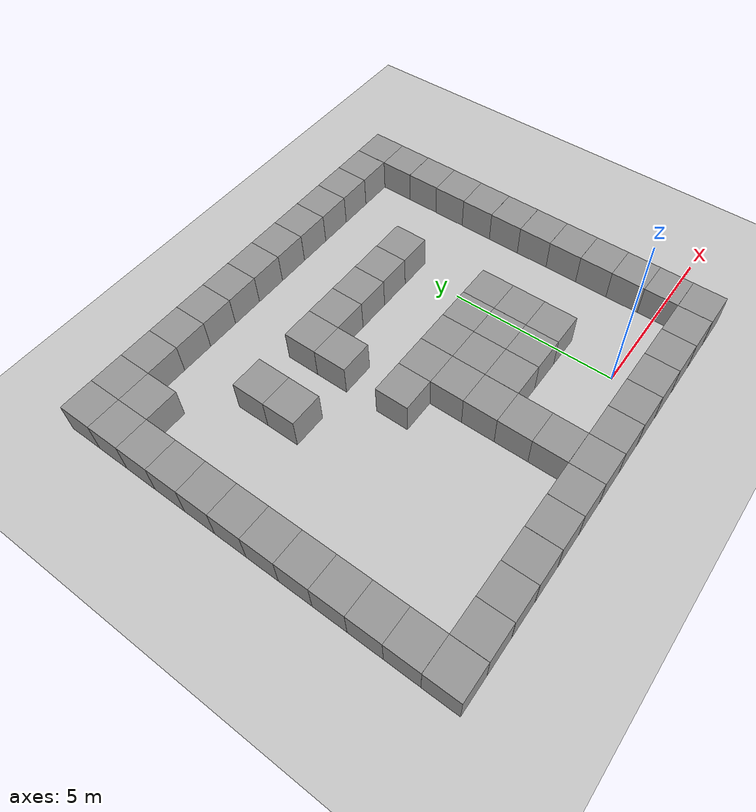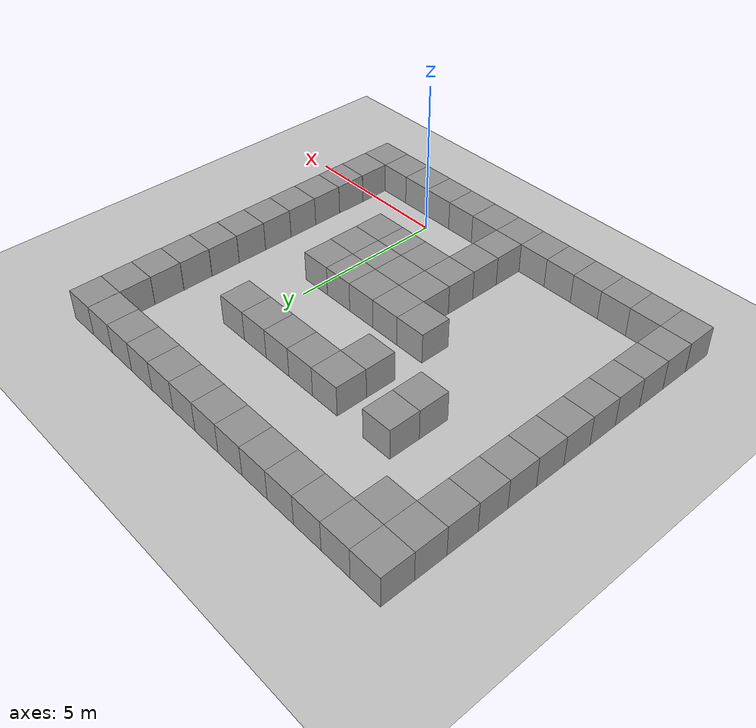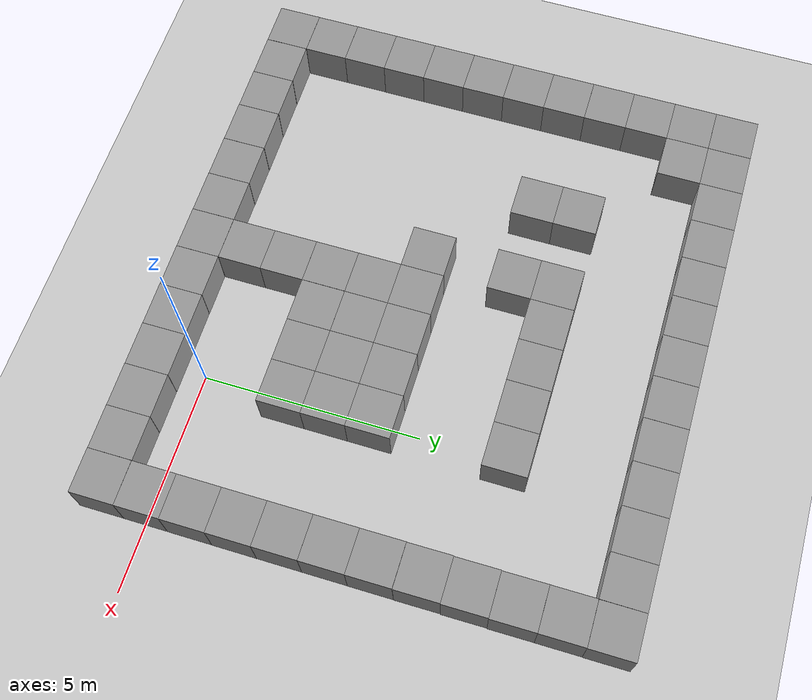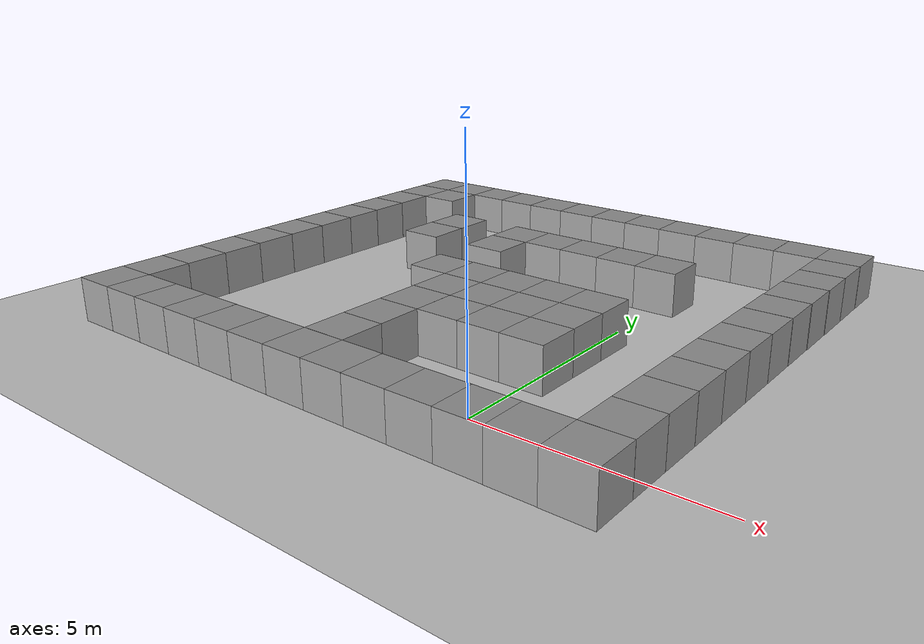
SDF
<sdf version="1.6">
 <world name="default">
  <light name="sun" type="directional">
   <pose>0 0 10 0 -0 0</pose>
   <diffuse>0.8 0.8 0.8 1</diffuse>
   <specular>0.2 0.2 0.2 1</specular>
   <attenuation>
    <range>1000</range>
    <constant>0.9</constant>
    <linear>0.01</linear>
    <quadratic>0.001</quadratic>
   </attenuation>
   <direction>-0.5 0.1 -0.9</direction>
  </light>
  <model name="ground_plane">
   <static>1</static>
   <link name="link">
    <collision name="collision">
     <geometry><plane><normal>0 0 1</normal><size>100 100</size></plane></geometry>
     <surface>
      <contact><collide_bitmask>65535</collide_bitmask></contact>
      <friction><ode><mu>100</mu><mu2>50</mu2></ode></friction>
     </surface>
    </collision>
    <visual name="visual">
     <cast_shadows>0</cast_shadows>
     <geometry><plane><normal>0 0 1</normal><size>100 100</size></plane></geometry>
     <material>
      <script><uri>file://media/materials/scripts/gazebo.material</uri><name>Gazebo/Grey</name></script>
     </material>
    </visual>
   </link>
  </model>
  <gravity>0 0 -9.8</gravity>
  <magnetic_field>6e-06 2.3e-05 -4.2e-05</magnetic_field>
  <atmosphere type="adiabatic"/>
  <physics name="default_physics" default="0" type="ode">
   <max_step_size>0.001</max_step_size>
   <real_time_factor>1</real_time_factor>
   <real_time_update_rate>1000</real_time_update_rate>
  </physics>
  <scene><ambient>0.4 0.4 0.4 1</ambient><background>0.7 0.7 0.7 1</background><shadows>1</shadows></scene>
  <audio><device>default</device></audio>
  <spherical_coordinates>
   <surface_model>EARTH_WGS84</surface_model>
   <latitude_deg>0</latitude_deg>
   <longitude_deg>0</longitude_deg>
   <elevation>0</elevation>
   <heading_deg>0</heading_deg>
  </spherical_coordinates>
  <model name="unit_box">
   <pose>1.00061 -1.00045 0.499995 -1e-05 -0 0.004028</pose>
   <link name="link">
    <inertial>
     <mass>1</mass>
     <inertia>
      <ixx>0.166667</ixx>
      <ixy>0</ixy>
      <ixz>0</ixz>
      <iyy>0.166667</iyy>
      <iyz>0</iyz>
      <izz>0.166667</izz>
     </inertia>
    </inertial>
    <collision name="collision"><geometry><box><size>1 1 1</size></box></geometry></collision>
    <visual name="visual">
     <geometry><box><size>1 1 1</size></box></geometry>
     <material>
      <script><name>Gazebo/Grey</name><uri>file://media/materials/scripts/gazebo.material</uri></script>
     </material>
    </visual>
   </link>
  </model>
  <model name="unit_box_0">
   <pose>2.00064 -1.00086 0.499995 -1e-05 -0 0.004051</pose>
   <link name="link">
    <inertial>
     <mass>1</mass>
     <inertia>
      <ixx>0.166667</ixx>
      <ixy>0</ixy>
      <ixz>0</ixz>
      <iyy>0.166667</iyy>
      <iyz>0</iyz>
      <izz>0.166667</izz>
     </inertia>
    </inertial>
    <collision name="collision"><geometry><box><size>1 1 1</size></box></geometry></collision>
    <visual name="visual">
     <geometry><box><size>1 1 1</size></box></geometry>
     <material>
      <script><name>Gazebo/Grey</name><uri>file://media/materials/scripts/gazebo.material</uri></script>
     </material>
    </visual>
   </link>
  </model>
  <model name="unit_box_1">
   <pose>3.00114 -1.00316 0.499995 1e-05 -0 0.003325</pose>
   <link name="link">
    <inertial>
     <mass>1</mass>
     <inertia>
      <ixx>0.166667</ixx>
      <ixy>0</ixy>
      <ixz>0</ixz>
      <iyy>0.166667</iyy>
      <iyz>0</iyz>
      <izz>0.166667</izz>
     </inertia>
    </inertial>
    <collision name="collision"><geometry><box><size>1 1 1</size></box></geometry></collision>
    <visual name="visual">
     <geometry><box><size>1 1 1</size></box></geometry>
     <material>
      <script><name>Gazebo/Grey</name><uri>file://media/materials/scripts/gazebo.material</uri></script>
     </material>
    </visual>
   </link>
  </model>
  <model name="unit_box_3">
   <pose>-9.00146 -1.00111 0.499995 0 1e-05 0.002462</pose>
   <link name="link">
    <inertial>
     <mass>1</mass>
     <inertia>
      <ixx>0.166667</ixx>
      <ixy>0</ixy>
      <ixz>0</ixz>
      <iyy>0.166667</iyy>
      <iyz>0</iyz>
      <izz>0.166667</izz>
     </inertia>
    </inertial>
    <collision name="collision"><geometry><box><size>1 1 1</size></box></geometry></collision>
    <visual name="visual">
     <geometry><box><size>1 1 1</size></box></geometry>
     <material>
      <script><name>Gazebo/Grey</name><uri>file://media/materials/scripts/gazebo.material</uri></script>
     </material>
    </visual>
   </link>
  </model>
  <model name="unit_box_2">
   <pose>-8.00038 -0.999696 0.5 0 -0 0.004619</pose>
   <link name="link">
    <inertial>
     <mass>1</mass>
     <inertia>
      <ixx>0.166667</ixx>
      <ixy>0</ixy>
      <ixz>0</ixz>
      <iyy>0.166667</iyy>
      <iyz>0</iyz>
      <izz>0.166667</izz>
     </inertia>
    </inertial>
    <collision name="collision"><geometry><box><size>1 1 1</size></box></geometry></collision>
    <visual name="visual">
     <geometry><box><size>1 1 1</size></box></geometry>
     <material>
      <script><name>Gazebo/Grey</name><uri>file://media/materials/scripts/gazebo.material</uri></script>
     </material>
    </visual>
   </link>
  </model>
  <model name="unit_box_4">
   <pose>-7.00037 -0.999874 0.499995 1e-05 -0 0.004618</pose>
   <link name="link">
    <inertial>
     <mass>1</mass>
     <inertia>
      <ixx>0.166667</ixx>
      <ixy>0</ixy>
      <ixz>0</ixz>
      <iyy>0.166667</iyy>
      <iyz>0</iyz>
      <izz>0.166667</izz>
     </inertia>
    </inertial>
    <collision name="collision"><geometry><box><size>1 1 1</size></box></geometry></collision>
    <visual name="visual">
     <geometry><box><size>1 1 1</size></box></geometry>
     <material>
      <script><name>Gazebo/Grey</name><uri>file://media/materials/scripts/gazebo.material</uri></script>
     </material>
    </visual>
   </link>
  </model>
  <model name="unit_box_5">
   <pose>-6.00035 -1.00053 0.5 0 -0 0.004619</pose>
   <link name="link">
    <inertial>
     <mass>1</mass>
     <inertia>
      <ixx>0.166667</ixx>
      <ixy>0</ixy>
      <ixz>0</ixz>
      <iyy>0.166667</iyy>
      <iyz>0</iyz>
      <izz>0.166667</izz>
     </inertia>
    </inertial>
    <collision name="collision"><geometry><box><size>1 1 1</size></box></geometry></collision>
    <visual name="visual">
     <geometry><box><size>1 1 1</size></box></geometry>
     <material>
      <script><name>Gazebo/Grey</name><uri>file://media/materials/scripts/gazebo.material</uri></script>
     </material>
    </visual>
   </link>
  </model>
  <model name="unit_box_6">
   <pose>-5.00003 -1.0008 0.499995 -1e-05 0 0.003996</pose>
   <link name="link">
    <inertial>
     <mass>1</mass>
     <inertia>
      <ixx>0.166667</ixx>
      <ixy>0</ixy>
      <ixz>0</ixz>
      <iyy>0.166667</iyy>
      <iyz>0</iyz>
      <izz>0.166667</izz>
     </inertia>
    </inertial>
    <collision name="collision"><geometry><box><size>1 1 1</size></box></geometry></collision>
    <visual name="visual">
     <geometry><box><size>1 1 1</size></box></geometry>
     <material>
      <script><name>Gazebo/Grey</name><uri>file://media/materials/scripts/gazebo.material</uri></script>
     </material>
    </visual>
   </link>
  </model>
  <model name="unit_box_7">
   <pose>-3.99986 -1.00158 0.499995 0 1e-05 0.003714</pose>
   <link name="link">
    <inertial>
     <mass>1</mass>
     <inertia>
      <ixx>0.166667</ixx>
      <ixy>0</ixy>
      <ixz>0</ixz>
      <iyy>0.166667</iyy>
      <iyz>0</iyz>
      <izz>0.166667</izz>
     </inertia>
    </inertial>
    <collision name="collision"><geometry><box><size>1 1 1</size></box></geometry></collision>
    <visual name="visual">
     <geometry><box><size>1 1 1</size></box></geometry>
     <material>
      <script><name>Gazebo/Grey</name><uri>file://media/materials/scripts/gazebo.material</uri></script>
     </material>
    </visual>
   </link>
  </model>
  <model name="unit_box_8">
   <pose>-2.99972 -1.00165 0.499995 0 1e-05 0.003476</pose>
   <link name="link">
    <inertial>
     <mass>1</mass>
     <inertia>
      <ixx>0.166667</ixx>
      <ixy>0</ixy>
      <ixz>0</ixz>
      <iyy>0.166667</iyy>
      <iyz>0</iyz>
      <izz>0.166667</izz>
     </inertia>
    </inertial>
    <collision name="collision"><geometry><box><size>1 1 1</size></box></geometry></collision>
    <visual name="visual">
     <geometry><box><size>1 1 1</size></box></geometry>
     <material>
      <script><name>Gazebo/Grey</name><uri>file://media/materials/scripts/gazebo.material</uri></script>
     </material>
    </visual>
   </link>
  </model>
  <model name="unit_box_9">
   <pose>-1.99944 -0.999961 0.499995 1e-05 -0 0.004009</pose>
   <link name="link">
    <inertial>
     <mass>1</mass>
     <inertia>
      <ixx>0.166667</ixx>
      <ixy>0</ixy>
      <ixz>0</ixz>
      <iyy>0.166667</iyy>
      <iyz>0</iyz>
      <izz>0.166667</izz>
     </inertia>
    </inertial>
    <collision name="collision"><geometry><box><size>1 1 1</size></box></geometry></collision>
    <visual name="visual">
     <geometry><box><size>1 1 1</size></box></geometry>
     <material>
      <script><name>Gazebo/Grey</name><uri>file://media/materials/scripts/gazebo.material</uri></script>
     </material>
    </visual>
   </link>
  </model>
  <model name="unit_box_10">
   <pose>-0.999426 -1.00001 0.499995 1e-05 -0 0.00402</pose>
   <link name="link">
    <inertial>
     <mass>1</mass>
     <inertia>
      <ixx>0.166667</ixx>
      <ixy>0</ixy>
      <ixz>0</ixz>
      <iyy>0.166667</iyy>
      <iyz>0</iyz>
      <izz>0.166667</izz>
     </inertia>
    </inertial>
    <collision name="collision"><geometry><box><size>1 1 1</size></box></geometry></collision>
    <visual name="visual">
     <geometry><box><size>1 1 1</size></box></geometry>
     <material>
      <script><name>Gazebo/Grey</name><uri>file://media/materials/scripts/gazebo.material</uri></script>
     </material>
    </visual>
   </link>
  </model>
  <model name="unit_box_11">
   <pose>0.000594 -1.00039 0.499995 0 1e-05 0.00402</pose>
   <link name="link">
    <inertial>
     <mass>1</mass>
     <inertia>
      <ixx>0.166667</ixx>
      <ixy>0</ixy>
      <ixz>0</ixz>
      <iyy>0.166667</iyy>
      <iyz>0</iyz>
      <izz>0.166667</izz>
     </inertia>
    </inertial>
    <collision name="collision"><geometry><box><size>1 1 1</size></box></geometry></collision>
    <visual name="visual">
     <geometry><box><size>1 1 1</size></box></geometry>
     <material>
      <script><name>Gazebo/Grey</name><uri>file://media/materials/scripts/gazebo.material</uri></script>
     </material>
    </visual>
   </link>
  </model>
  <model name="unit_box_12">
   <pose>-9.00066 1.3e-05 0.5 0 -0 0.000207</pose>
   <link name="link">
    <inertial>
     <mass>1</mass>
     <inertia>
      <ixx>0.166667</ixx>
      <ixy>0</ixy>
      <ixz>0</ixz>
      <iyy>0.166667</iyy>
      <iyz>0</iyz>
      <izz>0.166667</izz>
     </inertia>
    </inertial>
    <collision name="collision"><geometry><box><size>1 1 1</size></box></geometry></collision>
    <visual name="visual">
     <geometry><box><size>1 1 1</size></box></geometry>
     <material>
      <script><name>Gazebo/Grey</name><uri>file://media/materials/scripts/gazebo.material</uri></script>
     </material>
    </visual>
   </link>
  </model>
  <model name="unit_box_15">
   <pose>-3.00118 2.00026 0.499995 0 -1e-05 -0.000286</pose>
   <link name="link">
    <inertial>
     <mass>1</mass>
     <inertia>
      <ixx>0.166667</ixx>
      <ixy>0</ixy>
      <ixz>0</ixz>
      <iyy>0.166667</iyy>
      <iyz>0</iyz>
      <izz>0.166667</izz>
     </inertia>
    </inertial>
    <collision name="collision"><geometry><box><size>1 1 1</size></box></geometry></collision>
    <visual name="visual">
     <geometry><box><size>1 1 1</size></box></geometry>
     <material>
      <script><name>Gazebo/Grey</name><uri>file://media/materials/scripts/gazebo.material</uri></script>
     </material>
    </visual>
   </link>
  </model>
  <model name="unit_box_24">
   <pose>-9.00034 1.00008 0.499995 -1e-05 -0 9.4e-05</pose>
   <link name="link">
    <inertial>
     <mass>1</mass>
     <inertia>
      <ixx>0.166667</ixx>
      <ixy>0</ixy>
      <ixz>0</ixz>
      <iyy>0.166667</iyy>
      <iyz>0</iyz>
      <izz>0.166667</izz>
     </inertia>
    </inertial>
    <collision name="collision"><geometry><box><size>1 1 1</size></box></geometry></collision>
    <visual name="visual">
     <geometry><box><size>1 1 1</size></box></geometry>
     <material>
      <script><name>Gazebo/Grey</name><uri>file://media/materials/scripts/gazebo.material</uri></script>
     </material>
    </visual>
   </link>
  </model>
  <model name="unit_box_25">
   <pose>-8.99995 2.00008 0.499995 0 1e-05 7.2e-05</pose>
   <link name="link">
    <inertial>
     <mass>1</mass>
     <inertia>
      <ixx>0.166667</ixx>
      <ixy>0</ixy>
      <ixz>0</ixz>
      <iyy>0.166667</iyy>
      <iyz>0</iyz>
      <izz>0.166667</izz>
     </inertia>
    </inertial>
    <collision name="collision"><geometry><box><size>1 1 1</size></box></geometry></collision>
    <visual name="visual">
     <geometry><box><size>1 1 1</size></box></geometry>
     <material>
      <script><name>Gazebo/Grey</name><uri>file://media/materials/scripts/gazebo.material</uri></script>
     </material>
    </visual>
   </link>
  </model>
  <model name="unit_box_30">
   <pose>-9.00003 8.00018 0.499995 -0 -1e-05 0.000168</pose>
   <link name="link">
    <inertial>
     <mass>1</mass>
     <inertia>
      <ixx>0.166667</ixx>
      <ixy>0</ixy>
      <ixz>0</ixz>
      <iyy>0.166667</iyy>
      <iyz>0</iyz>
      <izz>0.166667</izz>
     </inertia>
    </inertial>
    <collision name="collision"><geometry><box><size>1 1 1</size></box></geometry></collision>
    <visual name="visual">
     <geometry><box><size>1 1 1</size></box></geometry>
     <material>
      <script><name>Gazebo/Grey</name><uri>file://media/materials/scripts/gazebo.material</uri></script>
     </material>
    </visual>
   </link>
  </model>
  <model name="unit_box_31">
   <pose>-9.00006 9.00018 0.5 0 -0 0.000169</pose>
   <link name="link">
    <inertial>
     <mass>1</mass>
     <inertia>
      <ixx>0.166667</ixx>
      <ixy>0</ixy>
      <ixz>0</ixz>
      <iyy>0.166667</iyy>
      <iyz>0</iyz>
      <izz>0.166667</izz>
     </inertia>
    </inertial>
    <collision name="collision"><geometry><box><size>1 1 1</size></box></geometry></collision>
    <visual name="visual">
     <geometry><box><size>1 1 1</size></box></geometry>
     <material>
      <script><name>Gazebo/Grey</name><uri>file://media/materials/scripts/gazebo.material</uri></script>
     </material>
    </visual>
   </link>
  </model>
  <model name="unit_box_39">
   <pose>3.00075 -0.002109 0.499995 0 -1e-05 0.001349</pose>
   <link name="link">
    <inertial>
     <mass>1</mass>
     <inertia>
      <ixx>0.166667</ixx>
      <ixy>0</ixy>
      <ixz>0</ixz>
      <iyy>0.166667</iyy>
      <iyz>0</iyz>
      <izz>0.166667</izz>
     </inertia>
    </inertial>
    <collision name="collision"><geometry><box><size>1 1 1</size></box></geometry></collision>
    <visual name="visual">
     <geometry><box><size>1 1 1</size></box></geometry>
     <material>
      <script><name>Gazebo/Grey</name><uri>file://media/materials/scripts/gazebo.material</uri></script>
     </material>
    </visual>
   </link>
  </model>
  <model name="unit_box_40">
   <pose>3.00095 0.997903 0.499995 0 -1e-05 0.001352</pose>
   <link name="link">
    <inertial>
     <mass>1</mass>
     <inertia>
      <ixx>0.166667</ixx>
      <ixy>0</ixy>
      <ixz>0</ixz>
      <iyy>0.166667</iyy>
      <iyz>0</iyz>
      <izz>0.166667</izz>
     </inertia>
    </inertial>
    <collision name="collision"><geometry><box><size>1 1 1</size></box></geometry></collision>
    <visual name="visual">
     <geometry><box><size>1 1 1</size></box></geometry>
     <material>
      <script><name>Gazebo/Grey</name><uri>file://media/materials/scripts/gazebo.material</uri></script>
     </material>
    </visual>
   </link>
  </model>
  <model name="unit_box_41">
   <pose>3.00123 1.99792 0.499995 0 1e-05 0.001386</pose>
   <link name="link">
    <inertial>
     <mass>1</mass>
     <inertia>
      <ixx>0.166667</ixx>
      <ixy>0</ixy>
      <ixz>0</ixz>
      <iyy>0.166667</iyy>
      <iyz>0</iyz>
      <izz>0.166667</izz>
     </inertia>
    </inertial>
    <collision name="collision"><geometry><box><size>1 1 1</size></box></geometry></collision>
    <visual name="visual">
     <geometry><box><size>1 1 1</size></box></geometry>
     <material>
      <script><name>Gazebo/Grey</name><uri>file://media/materials/scripts/gazebo.material</uri></script>
     </material>
    </visual>
   </link>
  </model>
  <model name="unit_box_47">
   <pose>2.99921 2.99799 0.499995 0 1e-05 0.001518</pose>
   <link name="link">
    <inertial>
     <mass>1</mass>
     <inertia>
      <ixx>0.166667</ixx>
      <ixy>0</ixy>
      <ixz>0</ixz>
      <iyy>0.166667</iyy>
      <iyz>0</iyz>
      <izz>0.166667</izz>
     </inertia>
    </inertial>
    <collision name="collision"><geometry><box><size>1 1 1</size></box></geometry></collision>
    <visual name="visual">
     <geometry><box><size>1 1 1</size></box></geometry>
     <material>
      <script><name>Gazebo/Grey</name><uri>file://media/materials/scripts/gazebo.material</uri></script>
     </material>
    </visual>
   </link>
  </model>
  <model name="unit_box_48">
   <pose>2.99794 3.99807 0.499995 0 -1e-05 0.001668</pose>
   <link name="link">
    <inertial>
     <mass>1</mass>
     <inertia>
      <ixx>0.166667</ixx>
      <ixy>0</ixy>
      <ixz>0</ixz>
      <iyy>0.166667</iyy>
      <iyz>0</iyz>
      <izz>0.166667</izz>
     </inertia>
    </inertial>
    <collision name="collision"><geometry><box><size>1 1 1</size></box></geometry></collision>
    <visual name="visual">
     <geometry><box><size>1 1 1</size></box></geometry>
     <material>
      <script><name>Gazebo/Grey</name><uri>file://media/materials/scripts/gazebo.material</uri></script>
     </material>
    </visual>
   </link>
  </model>
  <model name="unit_box_49">
   <pose>2.99727 4.99872 0.499995 0 1e-05 0.002966</pose>
   <link name="link">
    <inertial>
     <mass>1</mass>
     <inertia>
      <ixx>0.166667</ixx>
      <ixy>0</ixy>
      <ixz>0</ixz>
      <iyy>0.166667</iyy>
      <iyz>0</iyz>
      <izz>0.166667</izz>
     </inertia>
    </inertial>
    <collision name="collision"><geometry><box><size>1 1 1</size></box></geometry></collision>
    <visual name="visual">
     <geometry><box><size>1 1 1</size></box></geometry>
     <material>
      <script><name>Gazebo/Grey</name><uri>file://media/materials/scripts/gazebo.material</uri></script>
     </material>
    </visual>
   </link>
  </model>
  <model name="unit_box_50">
   <pose>2.99765 6.00088 0.499995 0 -1e-05 0.007275</pose>
   <link name="link">
    <inertial>
     <mass>1</mass>
     <inertia>
      <ixx>0.166667</ixx>
      <ixy>0</ixy>
      <ixz>0</ixz>
      <iyy>0.166667</iyy>
      <iyz>0</iyz>
      <izz>0.166667</izz>
     </inertia>
    </inertial>
    <collision name="collision"><geometry><box><size>1 1 1</size></box></geometry></collision>
    <visual name="visual">
     <geometry><box><size>1 1 1</size></box></geometry>
     <material>
      <script><name>Gazebo/Grey</name><uri>file://media/materials/scripts/gazebo.material</uri></script>
     </material>
    </visual>
   </link>
  </model>
  <model name="unit_box_51">
   <pose>3.00198 7.00097 0.499995 0 -1e-05 0.007224</pose>
   <link name="link">
    <inertial>
     <mass>1</mass>
     <inertia>
      <ixx>0.166667</ixx>
      <ixy>0</ixy>
      <ixz>0</ixz>
      <iyy>0.166667</iyy>
      <iyz>0</iyz>
      <izz>0.166667</izz>
     </inertia>
    </inertial>
    <collision name="collision"><geometry><box><size>1 1 1</size></box></geometry></collision>
    <visual name="visual">
     <geometry><box><size>1 1 1</size></box></geometry>
     <material>
      <script><name>Gazebo/Grey</name><uri>file://media/materials/scripts/gazebo.material</uri></script>
     </material>
    </visual>
   </link>
  </model>
  <model name="unit_box_52">
   <pose>3.0048 8.00126 0.5 0 -0 0.00674</pose>
   <link name="link">
    <inertial>
     <mass>1</mass>
     <inertia>
      <ixx>0.166667</ixx>
      <ixy>0</ixy>
      <ixz>0</ixz>
      <iyy>0.166667</iyy>
      <iyz>0</iyz>
      <izz>0.166667</izz>
     </inertia>
    </inertial>
    <collision name="collision"><geometry><box><size>1 1 1</size></box></geometry></collision>
    <visual name="visual">
     <geometry><box><size>1 1 1</size></box></geometry>
     <material>
      <script><name>Gazebo/Grey</name><uri>file://media/materials/scripts/gazebo.material</uri></script>
     </material>
    </visual>
   </link>
  </model>
  <model name="unit_box_13">
   <pose>-2.99996 1.00006 0.499995 0 1e-05 7.2e-05</pose>
   <link name="link">
    <inertial>
     <mass>1</mass>
     <inertia>
      <ixx>0.166667</ixx>
      <ixy>0</ixy>
      <ixz>0</ixz>
      <iyy>0.166667</iyy>
      <iyz>0</iyz>
      <izz>0.166667</izz>
     </inertia>
    </inertial>
    <collision name="collision"><geometry><box><size>1 1 1</size></box></geometry></collision>
    <visual name="visual">
     <geometry><box><size>1 1 1</size></box></geometry>
     <material>
      <script><name>Gazebo/Grey</name><uri>file://media/materials/scripts/gazebo.material</uri></script>
     </material>
    </visual>
   </link>
  </model>
  <model name="unit_box_14">
   <pose>-2.99992 5.1e-05 0.499995 0 1e-05 7e-05</pose>
   <link name="link">
    <inertial>
     <mass>1</mass>
     <inertia>
      <ixx>0.166667</ixx>
      <ixy>0</ixy>
      <ixz>0</ixz>
      <iyy>0.166667</iyy>
      <iyz>0</iyz>
      <izz>0.166667</izz>
     </inertia>
    </inertial>
    <collision name="collision"><geometry><box><size>1 1 1</size></box></geometry></collision>
    <visual name="visual">
     <geometry><box><size>1 1 1</size></box></geometry>
     <material>
      <script><name>Gazebo/Grey</name><uri>file://media/materials/scripts/gazebo.material</uri></script>
     </material>
    </visual>
   </link>
  </model>
  <model name="unit_box_27">
   <pose>-1.99999 1.99996 0.499995 0 1e-05 1.5e-05</pose>
   <link name="link">
    <inertial>
     <mass>1</mass>
     <inertia>
      <ixx>0.166667</ixx>
      <ixy>0</ixy>
      <ixz>0</ixz>
      <iyy>0.166667</iyy>
      <iyz>0</iyz>
      <izz>0.166667</izz>
     </inertia>
    </inertial>
    <collision name="collision"><geometry><box><size>1 1 1</size></box></geometry></collision>
    <visual name="visual">
     <geometry><box><size>1 1 1</size></box></geometry>
     <material>
      <script><name>Gazebo/Grey</name><uri>file://media/materials/scripts/gazebo.material</uri></script>
     </material>
    </visual>
   </link>
  </model>
  <model name="unit_box_42">
   <pose>-0.999987 1.99997 0.499995 0 1e-05 1.4e-05</pose>
   <link name="link">
    <inertial>
     <mass>1</mass>
     <inertia>
      <ixx>0.166667</ixx>
      <ixy>0</ixy>
      <ixz>0</ixz>
      <iyy>0.166667</iyy>
      <iyz>0</iyz>
      <izz>0.166667</izz>
     </inertia>
    </inertial>
    <collision name="collision"><geometry><box><size>1 1 1</size></box></geometry></collision>
    <visual name="visual">
     <geometry><box><size>1 1 1</size></box></geometry>
     <material>
      <script><name>Gazebo/Grey</name><uri>file://media/materials/scripts/gazebo.material</uri></script>
     </material>
    </visual>
   </link>
  </model>
  <model name="unit_box_43">
   <pose>1.5e-05 1.99998 0.499995 0 -1e-05 1e-06</pose>
   <link name="link">
    <inertial>
     <mass>1</mass>
     <inertia>
      <ixx>0.166667</ixx>
      <ixy>0</ixy>
      <ixz>0</ixz>
      <iyy>0.166667</iyy>
      <iyz>0</iyz>
      <izz>0.166667</izz>
     </inertia>
    </inertial>
    <collision name="collision"><geometry><box><size>1 1 1</size></box></geometry></collision>
    <visual name="visual">
     <geometry><box><size>1 1 1</size></box></geometry>
     <material>
      <script><name>Gazebo/Grey</name><uri>file://media/materials/scripts/gazebo.material</uri></script>
     </material>
    </visual>
   </link>
  </model>
  <model name="unit_box_44">
   <pose>4e-05 3 0.499995 -0 1e-05 -3.2e-05</pose>
   <link name="link">
    <inertial>
     <mass>1</mass>
     <inertia>
      <ixx>0.166667</ixx>
      <ixy>0</ixy>
      <ixz>0</ixz>
      <iyy>0.166667</iyy>
      <iyz>0</iyz>
      <izz>0.166667</izz>
     </inertia>
    </inertial>
    <collision name="collision"><geometry><box><size>1 1 1</size></box></geometry></collision>
    <visual name="visual">
     <geometry><box><size>1 1 1</size></box></geometry>
     <material>
      <script><name>Gazebo/Grey</name><uri>file://media/materials/scripts/gazebo.material</uri></script>
     </material>
    </visual>
   </link>
  </model>
  <model name="unit_box_45">
   <pose>4.1e-05 4.00004 0.499995 -0 1e-05 -7.5e-05</pose>
   <link name="link">
    <inertial>
     <mass>1</mass>
     <inertia>
      <ixx>0.166667</ixx>
      <ixy>0</ixy>
      <ixz>0</ixz>
      <iyy>0.166667</iyy>
      <iyz>0</iyz>
      <izz>0.166667</izz>
     </inertia>
    </inertial>
    <collision name="collision"><geometry><box><size>1 1 1</size></box></geometry></collision>
    <visual name="visual">
     <geometry><box><size>1 1 1</size></box></geometry>
     <material>
      <script><name>Gazebo/Grey</name><uri>file://media/materials/scripts/gazebo.material</uri></script>
     </material>
    </visual>
   </link>
  </model>
  <model name="unit_box_16">
   <pose>-3.00015 3.00027 0.499995 -0 -1e-05 -0.000284</pose>
   <link name="link">
    <inertial>
     <mass>1</mass>
     <inertia>
      <ixx>0.166667</ixx>
      <ixy>0</ixy>
      <ixz>0</ixz>
      <iyy>0.166667</iyy>
      <iyz>0</iyz>
      <izz>0.166667</izz>
     </inertia>
    </inertial>
    <collision name="collision"><geometry><box><size>1 1 1</size></box></geometry></collision>
    <visual name="visual">
     <geometry><box><size>1 1 1</size></box></geometry>
     <material>
      <script><name>Gazebo/Grey</name><uri>file://media/materials/scripts/gazebo.material</uri></script>
     </material>
    </visual>
   </link>
  </model>
  <model name="unit_box_17">
   <pose>-3.00005 4.00031 0.499995 -0 1e-05 -0.000185</pose>
   <link name="link">
    <inertial>
     <mass>1</mass>
     <inertia>
      <ixx>0.166667</ixx>
      <ixy>0</ixy>
      <ixz>0</ixz>
      <iyy>0.166667</iyy>
      <iyz>0</iyz>
      <izz>0.166667</izz>
     </inertia>
    </inertial>
    <collision name="collision"><geometry><box><size>1 1 1</size></box></geometry></collision>
    <visual name="visual">
     <geometry><box><size>1 1 1</size></box></geometry>
     <material>
      <script><name>Gazebo/Grey</name><uri>file://media/materials/scripts/gazebo.material</uri></script>
     </material>
    </visual>
   </link>
  </model>
  <model name="unit_box_18">
   <pose>-1.99998 4.00009 0.5 0 0 -0.000112</pose>
   <link name="link">
    <inertial>
     <mass>1</mass>
     <inertia>
      <ixx>0.166667</ixx>
      <ixy>0</ixy>
      <ixz>0</ixz>
      <iyy>0.166667</iyy>
      <iyz>0</iyz>
      <izz>0.166667</izz>
     </inertia>
    </inertial>
    <collision name="collision"><geometry><box><size>1 1 1</size></box></geometry></collision>
    <visual name="visual">
     <geometry><box><size>1 1 1</size></box></geometry>
     <material>
      <script><name>Gazebo/Grey</name><uri>file://media/materials/scripts/gazebo.material</uri></script>
     </material>
    </visual>
   </link>
  </model>
  <model name="unit_box_19">
   <pose>-0.999979 4.00004 0.499995 0 -1e-05 -9.5e-05</pose>
   <link name="link">
    <inertial>
     <mass>1</mass>
     <inertia>
      <ixx>0.166667</ixx>
      <ixy>0</ixy>
      <ixz>0</ixz>
      <iyy>0.166667</iyy>
      <iyz>0</iyz>
      <izz>0.166667</izz>
     </inertia>
    </inertial>
    <collision name="collision"><geometry><box><size>1 1 1</size></box></geometry></collision>
    <visual name="visual">
     <geometry><box><size>1 1 1</size></box></geometry>
     <material>
      <script><name>Gazebo/Grey</name><uri>file://media/materials/scripts/gazebo.material</uri></script>
     </material>
    </visual>
   </link>
  </model>
  <model name="unit_box_20">
   <pose>-0.999973 3 0.499995 1e-05 -0 -3.4e-05</pose>
   <link name="link">
    <inertial>
     <mass>1</mass>
     <inertia>
      <ixx>0.166667</ixx>
      <ixy>0</ixy>
      <ixz>0</ixz>
      <iyy>0.166667</iyy>
      <iyz>0</iyz>
      <izz>0.166667</izz>
     </inertia>
    </inertial>
    <collision name="collision"><geometry><box><size>1 1 1</size></box></geometry></collision>
    <visual name="visual">
     <geometry><box><size>1 1 1</size></box></geometry>
     <material>
      <script><name>Gazebo/Grey</name><uri>file://media/materials/scripts/gazebo.material</uri></script>
     </material>
    </visual>
   </link>
  </model>
  <model name="unit_box_21">
   <pose>-1.99998 3.00001 0.499995 1e-05 -0 -3.6e-05</pose>
   <link name="link">
    <inertial>
     <mass>1</mass>
     <inertia>
      <ixx>0.166667</ixx>
      <ixy>0</ixy>
      <ixz>0</ixz>
      <iyy>0.166667</iyy>
      <iyz>0</iyz>
      <izz>0.166667</izz>
     </inertia>
    </inertial>
    <collision name="collision"><geometry><box><size>1 1 1</size></box></geometry></collision>
    <visual name="visual">
     <geometry><box><size>1 1 1</size></box></geometry>
     <material>
      <script><name>Gazebo/Grey</name><uri>file://media/materials/scripts/gazebo.material</uri></script>
     </material>
    </visual>
   </link>
  </model>
  <model name="unit_box_22">
   <pose>-4.00009 3.99999 0.499995 1e-05 0 -0.000102</pose>
   <link name="link">
    <inertial>
     <mass>1</mass>
     <inertia>
      <ixx>0.166667</ixx>
      <ixy>0</ixy>
      <ixz>0</ixz>
      <iyy>0.166667</iyy>
      <iyz>0</iyz>
      <izz>0.166667</izz>
     </inertia>
    </inertial>
    <collision name="collision"><geometry><box><size>1 1 1</size></box></geometry></collision>
    <visual name="visual">
     <geometry><box><size>1 1 1</size></box></geometry>
     <material>
      <script><name>Gazebo/Grey</name><uri>file://media/materials/scripts/gazebo.material</uri></script>
     </material>
    </visual>
   </link>
  </model>
  <model name="unit_box_46">
   <pose>-4.00003 6.00003 0.499995 0 1e-05 -3.5e-05</pose>
   <link name="link">
    <inertial>
     <mass>1</mass>
     <inertia>
      <ixx>0.166667</ixx>
      <ixy>0</ixy>
      <ixz>0</ixz>
      <iyy>0.166667</iyy>
      <iyz>0</iyz>
      <izz>0.166667</izz>
     </inertia>
    </inertial>
    <collision name="collision"><geometry><box><size>1 1 1</size></box></geometry></collision>
    <visual name="visual">
     <geometry><box><size>1 1 1</size></box></geometry>
     <material>
      <script><name>Gazebo/Grey</name><uri>file://media/materials/scripts/gazebo.material</uri></script>
     </material>
    </visual>
   </link>
  </model>
  <model name="unit_box_58">
   <pose>-4.00002 7.00004 0.499995 0 1e-05 -3.1e-05</pose>
   <link name="link">
    <inertial>
     <mass>1</mass>
     <inertia>
      <ixx>0.166667</ixx>
      <ixy>0</ixy>
      <ixz>0</ixz>
      <iyy>0.166667</iyy>
      <iyz>0</iyz>
      <izz>0.166667</izz>
     </inertia>
    </inertial>
    <collision name="collision"><geometry><box><size>1 1 1</size></box></geometry></collision>
    <visual name="visual">
     <geometry><box><size>1 1 1</size></box></geometry>
     <material>
      <script><name>Gazebo/Grey</name><uri>file://media/materials/scripts/gazebo.material</uri></script>
     </material>
    </visual>
   </link>
  </model>
  <model name="unit_box_59">
   <pose>-2.99999 7.00001 0.499995 0 1e-05 -1e-06</pose>
   <link name="link">
    <inertial>
     <mass>1</mass>
     <inertia>
      <ixx>0.166667</ixx>
      <ixy>0</ixy>
      <ixz>0</ixz>
      <iyy>0.166667</iyy>
      <iyz>0</iyz>
      <izz>0.166667</izz>
     </inertia>
    </inertial>
    <collision name="collision"><geometry><box><size>1 1 1</size></box></geometry></collision>
    <visual name="visual">
     <geometry><box><size>1 1 1</size></box></geometry>
     <material>
      <script><name>Gazebo/Grey</name><uri>file://media/materials/scripts/gazebo.material</uri></script>
     </material>
    </visual>
   </link>
  </model>
  <model name="unit_box_60">
   <pose>-1.99999 7.00001 0.499995 0 1e-05 -1e-06</pose>
   <link name="link">
    <inertial>
     <mass>1</mass>
     <inertia>
      <ixx>0.166667</ixx>
      <ixy>0</ixy>
      <ixz>0</ixz>
      <iyy>0.166667</iyy>
      <iyz>0</iyz>
      <izz>0.166667</izz>
     </inertia>
    </inertial>
    <collision name="collision"><geometry><box><size>1 1 1</size></box></geometry></collision>
    <visual name="visual">
     <geometry><box><size>1 1 1</size></box></geometry>
     <material>
      <script><name>Gazebo/Grey</name><uri>file://media/materials/scripts/gazebo.material</uri></script>
     </material>
    </visual>
   </link>
  </model>
  <model name="unit_box_61">
   <pose>-0.999994 7.00002 0.499995 0 -1e-05 2e-06</pose>
   <link name="link">
    <inertial>
     <mass>1</mass>
     <inertia>
      <ixx>0.166667</ixx>
      <ixy>0</ixy>
      <ixz>0</ixz>
      <iyy>0.166667</iyy>
      <iyz>0</iyz>
      <izz>0.166667</izz>
     </inertia>
    </inertial>
    <collision name="collision"><geometry><box><size>1 1 1</size></box></geometry></collision>
    <visual name="visual">
     <geometry><box><size>1 1 1</size></box></geometry>
     <material>
      <script><name>Gazebo/Grey</name><uri>file://media/materials/scripts/gazebo.material</uri></script>
     </material>
    </visual>
   </link>
  </model>
  <model name="unit_box_62">
   <pose>1.1e-05 6.99999 0.499995 0 -1e-05 6e-06</pose>
   <link name="link">
    <inertial>
     <mass>1</mass>
     <inertia>
      <ixx>0.166667</ixx>
      <ixy>0</ixy>
      <ixz>0</ixz>
      <iyy>0.166667</iyy>
      <iyz>0</iyz>
      <izz>0.166667</izz>
     </inertia>
    </inertial>
    <collision name="collision"><geometry><box><size>1 1 1</size></box></geometry></collision>
    <visual name="visual">
     <geometry><box><size>1 1 1</size></box></geometry>
     <material>
      <script><name>Gazebo/Grey</name><uri>file://media/materials/scripts/gazebo.material</uri></script>
     </material>
    </visual>
   </link>
  </model>
  <model name="unit_box_63">
   <pose>-6.00001 6.00001 0.5 -1e-06 -0 4e-06</pose>
   <link name="link">
    <inertial>
     <mass>1</mass>
     <inertia>
      <ixx>0.166667</ixx>
      <ixy>0</ixy>
      <ixz>0</ixz>
      <iyy>0.166667</iyy>
      <iyz>0</iyz>
      <izz>0.166667</izz>
     </inertia>
    </inertial>
    <collision name="collision"><geometry><box><size>1 1 1</size></box></geometry></collision>
    <visual name="visual">
     <geometry><box><size>1 1 1</size></box></geometry>
     <material>
      <script><name>Gazebo/Grey</name><uri>file://media/materials/scripts/gazebo.material</uri></script>
     </material>
    </visual>
   </link>
  </model>
  <model name="unit_box_23">
   <pose>-6 7.00001 0.5 1e-06 -0 4e-06</pose>
   <link name="link">
    <inertial>
     <mass>1</mass>
     <inertia>
      <ixx>0.166667</ixx>
      <ixy>0</ixy>
      <ixz>0</ixz>
      <iyy>0.166667</iyy>
      <iyz>0</iyz>
      <izz>0.166667</izz>
     </inertia>
    </inertial>
    <collision name="collision"><geometry><box><size>1 1 1</size></box></geometry></collision>
    <visual name="visual">
     <geometry><box><size>1 1 1</size></box></geometry>
     <material>
      <script><name>Gazebo/Grey</name><uri>file://media/materials/scripts/gazebo.material</uri></script>
     </material>
    </visual>
   </link>
  </model>
  <model name="unit_box_28">
   <pose>3.00059 9.00223 0.5 0 -0 0.004796</pose>
   <link name="link">
    <inertial>
     <mass>1</mass>
     <inertia>
      <ixx>0.166667</ixx>
      <ixy>0</ixy>
      <ixz>0</ixz>
      <iyy>0.166667</iyy>
      <iyz>0</iyz>
      <izz>0.166667</izz>
     </inertia>
    </inertial>
    <collision name="collision"><geometry><box><size>1 1 1</size></box></geometry></collision>
    <visual name="visual">
     <geometry><box><size>1 1 1</size></box></geometry>
     <material>
      <script><name>Gazebo/Grey</name><uri>file://media/materials/scripts/gazebo.material</uri></script>
     </material>
    </visual>
   </link>
  </model>
  <model name="unit_box_29">
   <pose>3.00149 10.0029 0.499995 0 1e-05 0.003521</pose>
   <link name="link">
    <inertial>
     <mass>1</mass>
     <inertia>
      <ixx>0.166667</ixx>
      <ixy>0</ixy>
      <ixz>0</ixz>
      <iyy>0.166667</iyy>
      <iyz>0</iyz>
      <izz>0.166667</izz>
     </inertia>
    </inertial>
    <collision name="collision"><geometry><box><size>1 1 1</size></box></geometry></collision>
    <visual name="visual">
     <geometry><box><size>1 1 1</size></box></geometry>
     <material>
      <script><name>Gazebo/Grey</name><uri>file://media/materials/scripts/gazebo.material</uri></script>
     </material>
    </visual>
   </link>
  </model>
  <model name="unit_box_37">
   <pose>2.00004 10.0002 0.499995 0 -1e-05 0.000632</pose>
   <link name="link">
    <inertial>
     <mass>1</mass>
     <inertia>
      <ixx>0.166667</ixx>
      <ixy>0</ixy>
      <ixz>0</ixz>
      <iyy>0.166667</iyy>
      <iyz>0</iyz>
      <izz>0.166667</izz>
     </inertia>
    </inertial>
    <collision name="collision"><geometry><box><size>1 1 1</size></box></geometry></collision>
    <visual name="visual">
     <geometry><box><size>1 1 1</size></box></geometry>
     <material>
      <script><name>Gazebo/Grey</name><uri>file://media/materials/scripts/gazebo.material</uri></script>
     </material>
    </visual>
   </link>
  </model>
  <model name="unit_box_38">
   <pose>0.999987 10.0001 0.499995 0 1e-05 0.00052</pose>
   <link name="link">
    <inertial>
     <mass>1</mass>
     <inertia>
      <ixx>0.166667</ixx>
      <ixy>0</ixy>
      <ixz>0</ixz>
      <iyy>0.166667</iyy>
      <iyz>0</iyz>
      <izz>0.166667</izz>
     </inertia>
    </inertial>
    <collision name="collision"><geometry><box><size>1 1 1</size></box></geometry></collision>
    <visual name="visual">
     <geometry><box><size>1 1 1</size></box></geometry>
     <material>
      <script><name>Gazebo/Grey</name><uri>file://media/materials/scripts/gazebo.material</uri></script>
     </material>
    </visual>
   </link>
  </model>
  <model name="unit_box_53">
   <pose>-7e-05 10.0003 0.5 0 -0 0.000422</pose>
   <link name="link">
    <inertial>
     <mass>1</mass>
     <inertia>
      <ixx>0.166667</ixx>
      <ixy>0</ixy>
      <ixz>0</ixz>
      <iyy>0.166667</iyy>
      <iyz>0</iyz>
      <izz>0.166667</izz>
     </inertia>
    </inertial>
    <collision name="collision"><geometry><box><size>1 1 1</size></box></geometry></collision>
    <visual name="visual">
     <geometry><box><size>1 1 1</size></box></geometry>
     <material>
      <script><name>Gazebo/Grey</name><uri>file://media/materials/scripts/gazebo.material</uri></script>
     </material>
    </visual>
   </link>
  </model>
  <model name="unit_box_54">
   <pose>-1.0001 10.0004 0.499995 1e-05 -0 0.000365</pose>
   <link name="link">
    <inertial>
     <mass>1</mass>
     <inertia>
      <ixx>0.166667</ixx>
      <ixy>0</ixy>
      <ixz>0</ixz>
      <iyy>0.166667</iyy>
      <iyz>0</iyz>
      <izz>0.166667</izz>
     </inertia>
    </inertial>
    <collision name="collision"><geometry><box><size>1 1 1</size></box></geometry></collision>
    <visual name="visual">
     <geometry><box><size>1 1 1</size></box></geometry>
     <material>
      <script><name>Gazebo/Grey</name><uri>file://media/materials/scripts/gazebo.material</uri></script>
     </material>
    </visual>
   </link>
  </model>
  <model name="unit_box_55">
   <pose>-2.00016 10.0003 0.5 0 -0 0.000234</pose>
   <link name="link">
    <inertial>
     <mass>1</mass>
     <inertia>
      <ixx>0.166667</ixx>
      <ixy>0</ixy>
      <ixz>0</ixz>
      <iyy>0.166667</iyy>
      <iyz>0</iyz>
      <izz>0.166667</izz>
     </inertia>
    </inertial>
    <collision name="collision"><geometry><box><size>1 1 1</size></box></geometry></collision>
    <visual name="visual">
     <geometry><box><size>1 1 1</size></box></geometry>
     <material>
      <script><name>Gazebo/Grey</name><uri>file://media/materials/scripts/gazebo.material</uri></script>
     </material>
    </visual>
   </link>
  </model>
  <model name="unit_box_56">
   <pose>-3.00017 10.0001 0.5 0 -0 0.000234</pose>
   <link name="link">
    <inertial>
     <mass>1</mass>
     <inertia>
      <ixx>0.166667</ixx>
      <ixy>0</ixy>
      <ixz>0</ixz>
      <iyy>0.166667</iyy>
      <iyz>0</iyz>
      <izz>0.166667</izz>
     </inertia>
    </inertial>
    <collision name="collision"><geometry><box><size>1 1 1</size></box></geometry></collision>
    <visual name="visual">
     <geometry><box><size>1 1 1</size></box></geometry>
     <material>
      <script><name>Gazebo/Grey</name><uri>file://media/materials/scripts/gazebo.material</uri></script>
     </material>
    </visual>
   </link>
  </model>
  <model name="unit_box_32">
   <pose>-9.00021 10.0002 0.499995 0 -1e-05 0.00021</pose>
   <link name="link">
    <inertial>
     <mass>1</mass>
     <inertia>
      <ixx>0.166667</ixx>
      <ixy>0</ixy>
      <ixz>0</ixz>
      <iyy>0.166667</iyy>
      <iyz>0</iyz>
      <izz>0.166667</izz>
     </inertia>
    </inertial>
    <collision name="collision"><geometry><box><size>1 1 1</size></box></geometry></collision>
    <visual name="visual">
     <geometry><box><size>1 1 1</size></box></geometry>
     <material>
      <script><name>Gazebo/Grey</name><uri>file://media/materials/scripts/gazebo.material</uri></script>
     </material>
    </visual>
   </link>
  </model>
  <model name="unit_box_33">
   <pose>-8.00019 10 0.499995 0 -9e-06 0.000225</pose>
   <link name="link">
    <inertial>
     <mass>1</mass>
     <inertia>
      <ixx>0.166667</ixx>
      <ixy>0</ixy>
      <ixz>0</ixz>
      <iyy>0.166667</iyy>
      <iyz>0</iyz>
      <izz>0.166667</izz>
     </inertia>
    </inertial>
    <collision name="collision"><geometry><box><size>1 1 1</size></box></geometry></collision>
    <visual name="visual">
     <geometry><box><size>1 1 1</size></box></geometry>
     <material>
      <script><name>Gazebo/Grey</name><uri>file://media/materials/scripts/gazebo.material</uri></script>
     </material>
    </visual>
   </link>
  </model>
  <model name="unit_box_34">
   <pose>-7.00018 10.0001 0.499995 0 1e-05 0.00023</pose>
   <link name="link">
    <inertial>
     <mass>1</mass>
     <inertia>
      <ixx>0.166667</ixx>
      <ixy>0</ixy>
      <ixz>0</ixz>
      <iyy>0.166667</iyy>
      <iyz>0</iyz>
      <izz>0.166667</izz>
     </inertia>
    </inertial>
    <collision name="collision"><geometry><box><size>1 1 1</size></box></geometry></collision>
    <visual name="visual">
     <geometry><box><size>1 1 1</size></box></geometry>
     <material>
      <script><name>Gazebo/Grey</name><uri>file://media/materials/scripts/gazebo.material</uri></script>
     </material>
    </visual>
   </link>
  </model>
  <model name="unit_box_35">
   <pose>-6.00018 10.0001 0.499995 1e-05 -0 0.000229</pose>
   <link name="link">
    <inertial>
     <mass>1</mass>
     <inertia>
      <ixx>0.166667</ixx>
      <ixy>0</ixy>
      <ixz>0</ixz>
      <iyy>0.166667</iyy>
      <iyz>0</iyz>
      <izz>0.166667</izz>
     </inertia>
    </inertial>
    <collision name="collision"><geometry><box><size>1 1 1</size></box></geometry></collision>
    <visual name="visual">
     <geometry><box><size>1 1 1</size></box></geometry>
     <material>
      <script><name>Gazebo/Grey</name><uri>file://media/materials/scripts/gazebo.material</uri></script>
     </material>
    </visual>
   </link>
  </model>
  <model name="unit_box_57">
   <pose>-5.00018 10.0003 0.499995 1e-05 -0 0.00023</pose>
   <link name="link">
    <inertial>
     <mass>1</mass>
     <inertia>
      <ixx>0.166667</ixx>
      <ixy>0</ixy>
      <ixz>0</ixz>
      <iyy>0.166667</iyy>
      <iyz>0</iyz>
      <izz>0.166667</izz>
     </inertia>
    </inertial>
    <collision name="collision"><geometry><box><size>1 1 1</size></box></geometry></collision>
    <visual name="visual">
     <geometry><box><size>1 1 1</size></box></geometry>
     <material>
      <script><name>Gazebo/Grey</name><uri>file://media/materials/scripts/gazebo.material</uri></script>
     </material>
    </visual>
   </link>
  </model>
  <model name="unit_box_64">
   <pose>-4.00017 10.0001 0.499995 1e-05 -0 0.00023</pose>
   <link name="link">
    <inertial>
     <mass>1</mass>
     <inertia>
      <ixx>0.166667</ixx>
      <ixy>0</ixy>
      <ixz>0</ixz>
      <iyy>0.166667</iyy>
      <iyz>0</iyz>
      <izz>0.166667</izz>
     </inertia>
    </inertial>
    <collision name="collision"><geometry><box><size>1 1 1</size></box></geometry></collision>
    <visual name="visual">
     <geometry><box><size>1 1 1</size></box></geometry>
     <material>
      <script><name>Gazebo/Grey</name><uri>file://media/materials/scripts/gazebo.material</uri></script>
     </material>
    </visual>
   </link>
  </model>
  <model name="unit_box_65">
   <pose>-7.99994 8.99994 0.499995 0 -1e-05 0.000107</pose>
   <link name="link">
    <inertial>
     <mass>1</mass>
     <inertia>
      <ixx>0.166667</ixx>
      <ixy>0</ixy>
      <ixz>0</ixz>
      <iyy>0.166667</iyy>
      <iyz>0</iyz>
      <izz>0.166667</izz>
     </inertia>
    </inertial>
    <collision name="collision"><geometry><box><size>1 1 1</size></box></geometry></collision>
    <visual name="visual">
     <geometry><box><size>1 1 1</size></box></geometry>
     <material>
      <script><name>Gazebo/Grey</name><uri>file://media/materials/scripts/gazebo.material</uri></script>
     </material>
    </visual>
   </link>
  </model>
  <model name="unit_box_36">
   <pose>-9.00006 7.00016 0.49999 0 -0 0.000142</pose>
   <link name="link">
    <inertial>
     <mass>1</mass>
     <inertia>
      <ixx>0.166667</ixx>
      <ixy>0</ixy>
      <ixz>0</ixz>
      <iyy>0.166667</iyy>
      <iyz>0</iyz>
      <izz>0.166667</izz>
     </inertia>
    </inertial>
    <collision name="collision"><geometry><box><size>1 1 1</size></box></geometry></collision>
    <visual name="visual">
     <geometry><box><size>1 1 1</size></box></geometry>
     <material>
      <script><name>Gazebo/Grey</name><uri>file://media/materials/scripts/gazebo.material</uri></script>
     </material>
    </visual>
   </link>
  </model>
  <model name="unit_box_66">
   <pose>-8.99998 6.00015 0.5 0 -0 0.000126</pose>
   <link name="link">
    <inertial>
     <mass>1</mass>
     <inertia>
      <ixx>0.166667</ixx>
      <ixy>0</ixy>
      <ixz>0</ixz>
      <iyy>0.166667</iyy>
      <iyz>0</iyz>
      <izz>0.166667</izz>
     </inertia>
    </inertial>
    <collision name="collision"><geometry><box><size>1 1 1</size></box></geometry></collision>
    <visual name="visual">
     <geometry><box><size>1 1 1</size></box></geometry>
     <material>
      <script><name>Gazebo/Grey</name><uri>file://media/materials/scripts/gazebo.material</uri></script>
     </material>
    </visual>
   </link>
  </model>
  <model name="unit_box_26">
   <pose>-9.00001 5.0001 0.499995 1e-05 -0 5.1e-05</pose>
   <link name="link">
    <inertial>
     <mass>1</mass>
     <inertia>
      <ixx>0.166667</ixx>
      <ixy>0</ixy>
      <ixz>0</ixz>
      <iyy>0.166667</iyy>
      <iyz>0</iyz>
      <izz>0.166667</izz>
     </inertia>
    </inertial>
    <collision name="collision"><geometry><box><size>1 1 1</size></box></geometry></collision>
    <visual name="visual">
     <geometry><box><size>1 1 1</size></box></geometry>
     <material>
      <script><name>Gazebo/Grey</name><uri>file://media/materials/scripts/gazebo.material</uri></script>
     </material>
    </visual>
   </link>
  </model>
  <model name="unit_box_67">
   <pose>-9.00003 4.0001 0.5 0 -0 4.7e-05</pose>
   <link name="link">
    <inertial>
     <mass>1</mass>
     <inertia>
      <ixx>0.166667</ixx>
      <ixy>0</ixy>
      <ixz>0</ixz>
      <iyy>0.166667</iyy>
      <iyz>0</iyz>
      <izz>0.166667</izz>
     </inertia>
    </inertial>
    <collision name="collision"><geometry><box><size>1 1 1</size></box></geometry></collision>
    <visual name="visual">
     <geometry><box><size>1 1 1</size></box></geometry>
     <material>
      <script><name>Gazebo/Grey</name><uri>file://media/materials/scripts/gazebo.material</uri></script>
     </material>
    </visual>
   </link>
  </model>
  <model name="unit_box_68">
   <pose>-8.99995 3.0001 0.5 0 -0 5.4e-05</pose>
   <link name="link">
    <inertial>
     <mass>1</mass>
     <inertia>
      <ixx>0.166667</ixx>
      <ixy>0</ixy>
      <ixz>0</ixz>
      <iyy>0.166667</iyy>
      <iyz>0</iyz>
      <izz>0.166667</izz>
     </inertia>
    </inertial>
    <collision name="collision"><geometry><box><size>1 1 1</size></box></geometry></collision>
    <visual name="visual">
     <geometry><box><size>1 1 1</size></box></geometry>
     <material>
      <script><name>Gazebo/Grey</name><uri>file://media/materials/scripts/gazebo.material</uri></script>
     </material>
    </visual>
   </link>
  </model>
 </world>
</sdf>
